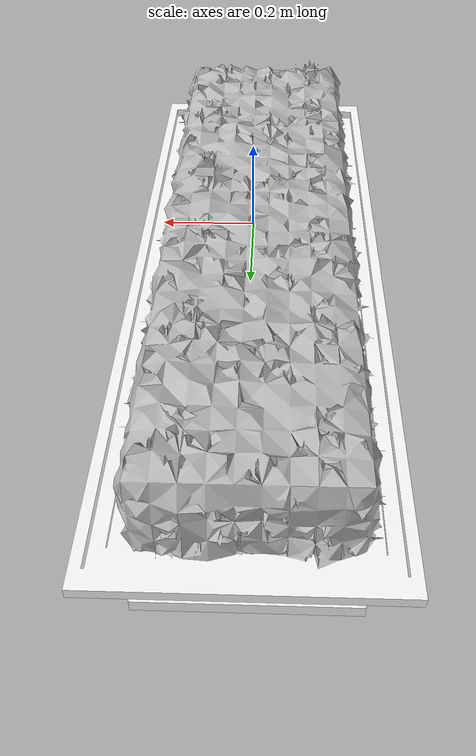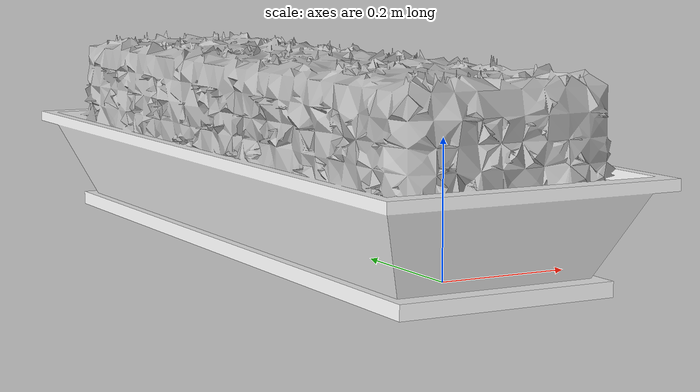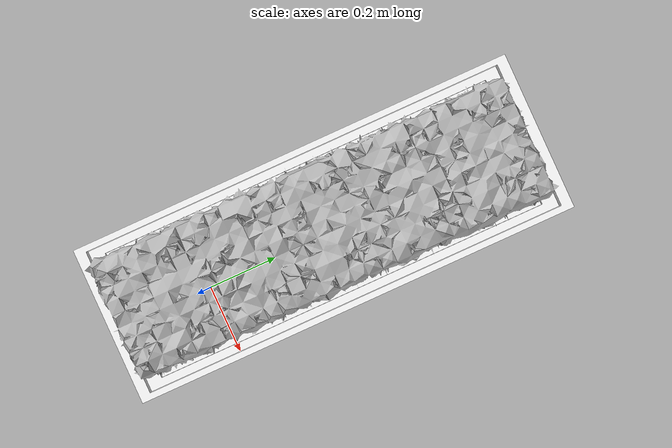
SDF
<?xml version="1.0" ?>
<sdf version="1.5">
  <model name="Bush high 1">
    <pose>0 0 0 0 0 0</pose>
    <static>true</static>
    <link name="link">
      <inertial>
        <mass>0.1</mass>
        <inertia>
          <ixx>1</ixx>
          <ixy>0</ixy>
          <ixz>0</ixz>
          <iyy>1</iyy>
          <iyz>0</iyz>
          <izz>1</izz>
        </inertia>
      </inertial>
      <collision name="collision">
        <pose>-0.02 0.35 0.25 0 0 0</pose>
        <geometry>
          <box>
            <size>0.5 1.2 0.5</size>
          </box>
        </geometry>
        <surface>
          <contact>
            <ode>
              <max_vel>0.1</max_vel>
              <min_depth>0.001</min_depth>
            </ode>
          </contact>
        </surface>
      </collision>
      <visual name="visual">
        <geometry>
          <mesh>
            <uri>model://gardener_bush_high_1/meshes/untitled.dae</uri>
          </mesh>
        </geometry>
      </visual>
    </link>
  </model>
</sdf>
